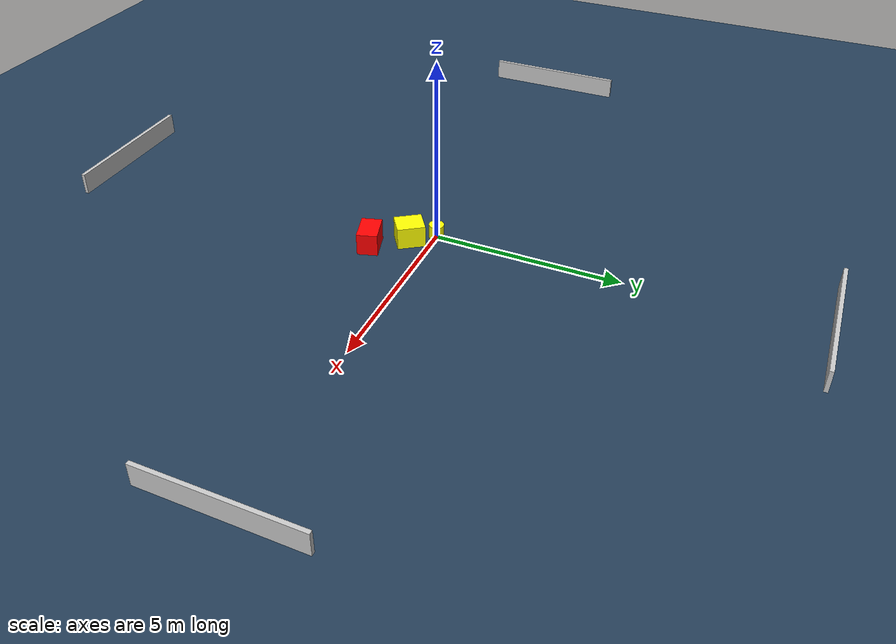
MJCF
<?xml version="1.0" ?>
<mujoco model="generated_environment">
  <option timestep="0.01" integrator="RK4" cone="elliptic"/>
  <default>
    <geom density="1"/>
  </default>
  <asset>
    <texture builtin="gradient" height="3072" name="skybox" rgb1="0.3 0.5 0.7" rgb2="0 0 0" type="skybox" width="512"/>
    <texture builtin="checker" height="300" name="groundplane" rgb1="0.2 0.3 0.4" rgb2="0.1 0.2 0.3" type="2d" width="300"/>
    <material name="groundplane" reflectance="0.2" texrepeat="5 5" texture="groundplane"/>
  </asset>
  <worldbody>
    <light dir="0 0 -1" directional="true" pos="0 0 1.5"/>
    <geom condim="3" friction="0.5 0.005 0.001" material="groundplane" name="floor" pos="0 0 0" size="0 0 0.05" type="plane"/>
    <body name="walls">
      <geom name="wall_1" condim="4" pos="-10.0 0.0 0.3" rgba="0.800000011920929 0.800000011920929 0.800000011920929 1.0" size="0.05 2.0 0.3" type="box"/>
      <geom name="wall_2" condim="4" pos="10.0 0.0 0.3" rgba="0.800000011920929 0.800000011920929 0.800000011920929 1.0" size="0.05 2.0 0.3" type="box"/>
      <geom name="wall_3" condim="4" pos="0.0 -10.0 0.3" rgba="0.800000011920929 0.800000011920929 0.800000011920929 1.0" size="2.0 0.05 0.3" type="box"/>
      <geom name="wall_4" condim="4" pos="0.0 10.0 0.3" rgba="0.800000011920929 0.800000011920929 0.800000011920929 1.0" size="2.0 0.05 0.3" type="box"/>
    </body>
    <body name="robot">
      <joint name="joint_x" type="slide" pos="0 0 0" axis="1 0 0"/>
      <joint name="joint_y" type="slide" pos="0 0 0" axis="0 1 0"/>
      <geom name="robot" type="cylinder" pos="0.0 0.0 0.2" size="0.2 0.2 0.0" mass="5.0" friction="1.0 0.005 0.0001" condim="4" rgba="1.0 1.0 0.0 1.0"/>
    </body>
    <body name="obstacle_1_movable">
      <geom name="obstacle_1_movable" condim="4" pos="0.45944455986124777 -0.5734667466592906 0.3" euler="0 0 214.63469734028752" friction="0.0 0.005 0.001" rgba="1.0 1.0 0.0 1.0" size="0.3138253974716959 0.367913672335194 0.3" type="box" mass="0.1"/>
      <joint type="free"/>
    </body>
    <body name="obstacle_2_static">
      <geom name="obstacle_2_static" condim="4" pos="1.0910628798921056 -1.4206121523928137 0.3" euler="0 0 106.63946077533569" friction="0.0 0.005 0.001" rgba="1.0 0.0 0.0 1.0" size="0.2717587850408291 0.3981607252352132 0.3" type="box"/>
    </body>
  </worldbody>
  <actuator>
    <motor name="actuator_x" joint="joint_x" gear="1" ctrlrange="-1 1"/>
    <motor name="actuator_y" joint="joint_y" gear="1" ctrlrange="-1 1"/>
  </actuator>
</mujoco>
